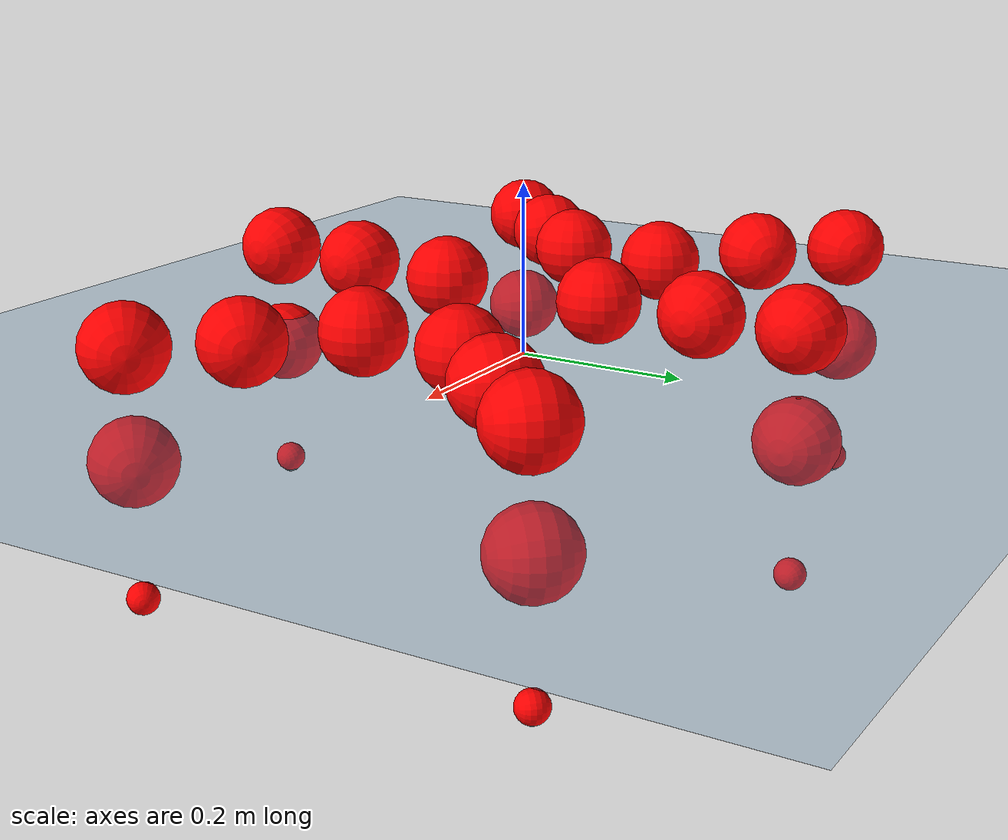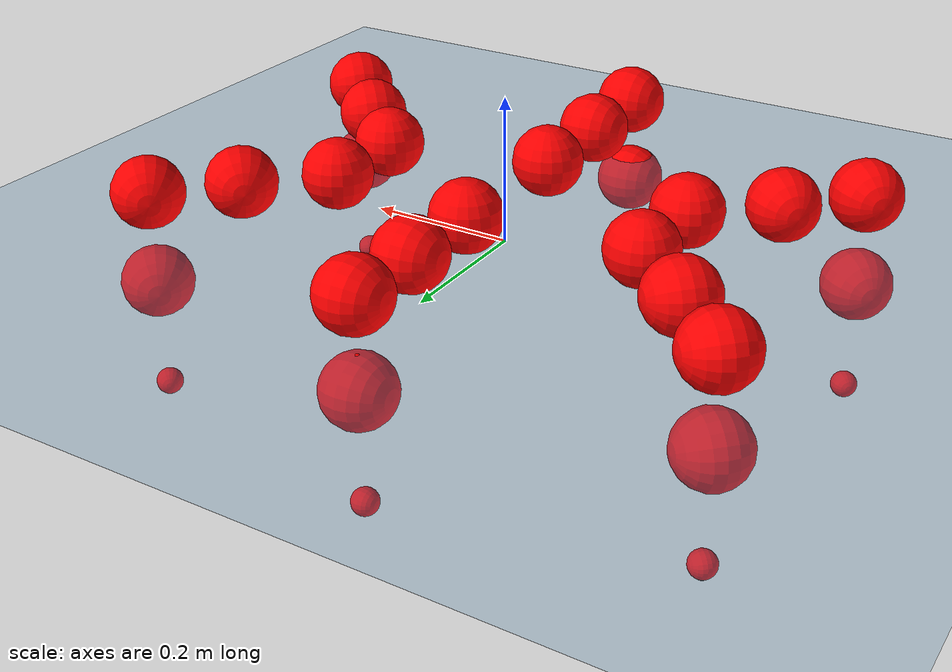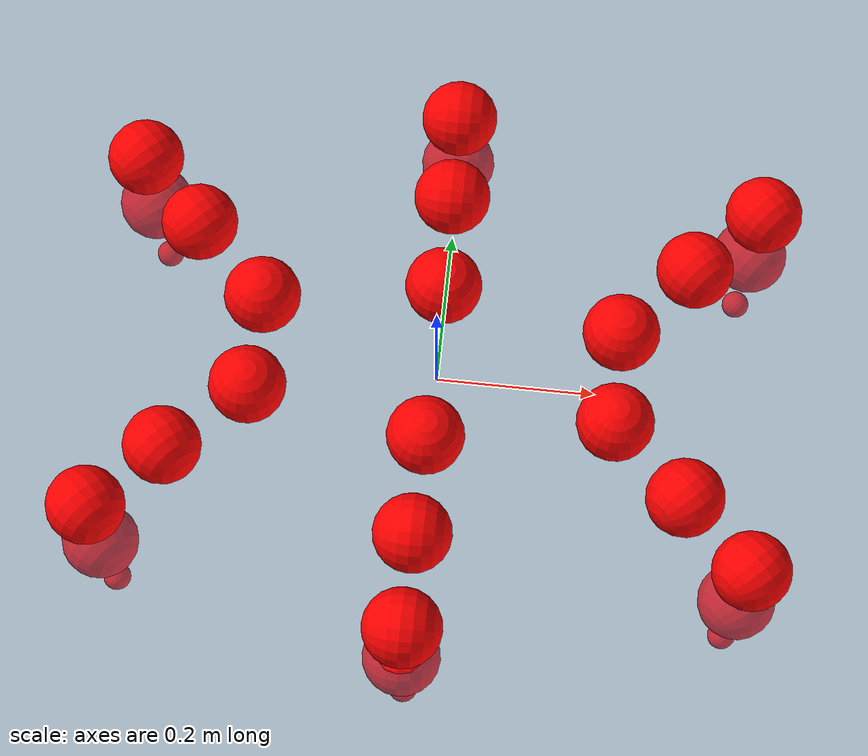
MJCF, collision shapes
<mujoco model="Golem">
  <compiler angle="radian" assetdir="assets" balanceinertia="true" inertiafromgeom="false"/>

  <option timestep="0.005" density="1.2" viscosity="2e-05"/>

  <size nkey="1"/>

  <visual>
    <quality shadowsize="8192"/>
    <map shadowclip="0.5"/>
  </visual>

  <default>
    <default class="/">
      <joint armature="0.01" damping="0.01" frictionloss="0.01"/>
      <geom contype="0" conaffinity="0" group="1" solref="-1000 -80"/>
      <site size="0.01 0.005 0.005" group="5"/>
      <general forcelimited="true" biastype="affine" gainprm="25" biasprm="0 -25 -0.5"/>
      <default class="visual">
        <geom type="mesh" group="2"/>
      </default>
      <default class="collision">
        <geom group="3"/>
      </default>
      <default class="foot">
        <geom size="0.01 0 0" condim="6" group="4" priority="1" solimp="0.015 1 0.01"/>
      </default>
      <default class="reward_collision_sphere">
        <geom group="5" rgba="1 0 0 1"/>
      </default>
    </default>
  </default>

  <asset>
    <texture type="skybox" colorspace="auto" name="//unnamed_texture_0" builtin="gradient" rgb1="0.95 0.95 0.95" rgb2="0.95 0.95 0.95" width="100" height="600"/>
    <texture type="2d" colorspace="auto" name="texplane" builtin="checker" rgb1="0.345 0.575 0.748" rgb2="0.345 0.575 0.748" markrgb="1 1 1" width="512" height="512"/>
    <material name="MatPlane" class="/" texture="texplane" texuniform="true" texrepeat="2 2" specular="0.9"/>
    <mesh name="body" class="/" file="body.stl" scale="0.001 0.001 0.001"/>
    <mesh name="coxa" class="/" file="coxa.stl" scale="0.001 0.001 0.001"/>
    <mesh name="femur" class="/" file="femur.stl" scale="0.001 0.001 0.001"/>
    <mesh name="tibia" class="/" file="tibia.stl" scale="0.001 0.001 0.001"/>
    <mesh name="tarsus" class="/" file="tarsus.stl" scale="0.001 0.001 0.001"/>
  </asset>

  <worldbody>
    <geom name="floor" class="/" size="100 100 0.125" type="plane" group="0" material="MatPlane"/>
    <light name="toplight_shadow" class="/" pos="0 0 5" dir="0.0990148 0.0990148 -0.990148" type="directional" ambient="0.04 0.04 0.04" diffuse="0.55 0.55 0.55" specular="0.12 0.12 0.12"/>
    <light name="toplight_fill" class="/" pos="0 0 5" dir="0.0990148 0.0990148 -0.990148" type="directional" castshadow="false" ambient="0.04 0.04 0.04" diffuse="0.3 0.3 0.3" specular="0.08 0.08 0.08"/>
    <body name="trunk" pos="-0.000766919 -0.00129412 0.00222891" quat="0.999999 -0.000208292 -0.000794035 0.000747039">
      <inertial pos="0.00105798 0.00164634 0.002957" quat="0.999983 -0.00177433 -0.000380024 0.00552606" mass="6.64099" diaginertia="0.0651351 0.0167765 0.0158104"/>
      <joint name="//unnamed_joint_0" type="free"/>
      <geom name="//unnamed_geom_1" class="/" pos="0 0 0.0698091" quat="1 0 0 0" type="mesh" rgba="0.9 0.9 0.9 1" mesh="body"/>
      <site name="imu" class="/" pos="0.183015 0.00392872 0.113408" size="0.0121179"/>
      <camera name="track" class="/" pos="0 -2.1953 0" quat="0.707107 0.707107 0 0" mode="trackcom"/>
      <camera name="ego_camera" class="/" pos="0.188104 0 0.109077" quat="-0.5 -0.5 0.5 0.5"/>
      <body name="coxa_RR" pos="-0.258991 -0.0899918 0.0726314" quat="0.383001 0.000477528 0.000995387 -0.923747">
        <inertial pos="0.000205543 0.00180922 0.00251747" quat="0.999991 0.00176713 0.0035795 -0.00171263" mass="0.36776" diaginertia="0.0646567 0.0165684 0.0167921"/>
        <joint name="coxa_joint_RR" class="/" pos="0 0 0" axis="0.00144423 -0.00891178 -0.999959" range="-3.1406 3.09359" armature="0.0109134" damping="0.00988799" frictionloss="0.0115491"/>
        <geom name="//unnamed_geom_2" class="/" type="mesh" rgba="0.2 0.2 0.2 1" mesh="coxa"/>
        <geom name="//unnamed_geom_3" class="reward_collision_sphere" size="0.0484715" pos="-0.0434085 0 0"/>
        <body name="femur_RR" pos="0.0851911 -0.00392999 -0.0045992" quat="0.499928 -0.500221 0.500223 0.499627">
          <inertial pos="0.00329089 9.91345e-05 0.00437673" quat="0.999833 -0.0136158 -0.0031268 -0.0117632" mass="0.358104" diaginertia="0.0644492 0.0160808 0.0153279"/>
          <joint name="femur_joint_RR" class="/" pos="0 0 0" axis="0.00653624 0.00714433 -0.999953" range="-3.19121 3.14939" armature="0.0117867" damping="0.0217475" frictionloss="0.0121403"/>
          <geom name="//unnamed_geom_4" class="/" type="mesh" rgba="0.9 0.9 0.9 1" mesh="femur"/>
          <geom name="//unnamed_geom_5" class="reward_collision_sphere" size="0.0484715"/>
          <body name="tibia_RR" pos="0.000758998 -0.117609 0.00357969" quat="-0.000267369 1 -0.000181417 -0.000476063">
            <inertial pos="-0.000938115 -2.45648e-05 0.00144409" quat="0.999978 -0.00430484 0.00176298 -0.00481548" mass="0.343704" diaginertia="0.0578398 0.0149673 0.0143784"/>
            <joint name="tibia_joint_RR" class="/" pos="0 0 0" axis="0.00290257 0.00153726 0.999995" stiffness="8.14609e-05" range="-3.16403 3.14261" armature="0.0108469" damping="0" frictionloss="0.0123322"/>
            <geom name="//unnamed_geom_6" class="/" type="mesh" rgba="0.2 0.2 0.2 1" mesh="tibia"/>
            <geom name="//unnamed_geom_7" class="reward_collision_sphere" size="0.0484715"/>
            <body name="tarsus_RR" pos="0.130322 0.00160603 -0.00176692" quat="1 0.000152776 0.000280867 0.000118793">
              <inertial pos="0.0858087 0.000610421 -0.000763367" quat="0.505407 0.511913 0.4896 0.492747" mass="0.331652" diaginertia="0.0644662 0.0157027 0.0149579"/>
              <joint name="tarsus_joint_RR" class="/" pos="0 0 0" axis="0.00847954 -0.0180502 0.999801" stiffness="0.00983917" range="-3.14841 3.12169" armature="0.0106887" damping="0.0391016" frictionloss="0.0136811"/>
              <geom name="//unnamed_geom_8" class="/" type="mesh" rgba="0.9 0.9 0.9 1" mesh="tarsus"/>
              <geom name="foot_1" class="foot" size="0.011465" pos="0.162058 0 0" quat="0 -0.707107 0 0.707107"/>
              <geom name="//unnamed_geom_10" class="reward_collision_sphere" size="0.0484715"/>
              <geom name="//unnamed_geom_11" class="reward_collision_sphere" size="0.0181768" pos="0.155547 0 0"/>
              <site name="foot_1" class="foot" pos="0.162058 0 0" quat="0 -0.707107 0 0.707107" size="0.0121179"/>
            </body>
          </body>
        </body>
      </body>
      <body name="coxa_RM" pos="-0.00236836 -0.148082 0.075062" quat="0.707022 0.000635493 0.00179513 -0.707189">
        <inertial pos="0.000844563 -0.000633311 0.00233646" quat="1 0.000310541 0.000375836 0.000133232" mass="0.35465" diaginertia="0.0653301 0.0159812 0.0147422"/>
        <joint name="coxa_joint_RM" class="/" pos="0 0 0" axis="-0.00269434 0.00186643 -0.999995" range="-3.18507 3.11054" armature="0.0131921" damping="0.0117073" frictionloss="0.0107736"/>
        <geom name="//unnamed_geom_12" class="/" type="mesh" rgba="0.2 0.2 0.2 1" mesh="coxa"/>
        <geom name="//unnamed_geom_13" class="reward_collision_sphere" size="0.0484715" pos="-0.0434085 0 0"/>
        <body name="femur_RM" pos="0.0848471 -0.0024172 0.00501599" quat="0.500006 -0.499913 0.500094 0.499987">
          <inertial pos="-0.00263068 -0.000662693 0.000144486" quat="0.999867 -0.00160939 0.0158018 0.00370074" mass="0.346584" diaginertia="0.065789 0.0161616 0.0151324"/>
          <joint name="femur_joint_RM" class="/" pos="0 0 0" axis="4.21993e-05 0.00441077 -0.99999" range="-3.14864 3.15471" armature="0.0135326" damping="0.028588" frictionloss="0.0113909"/>
          <geom name="//unnamed_geom_14" class="/" type="mesh" rgba="0.9 0.9 0.9 1" mesh="femur"/>
          <geom name="//unnamed_geom_15" class="reward_collision_sphere" size="0.0484715"/>
          <body name="tibia_RM" pos="-0.00485372 -0.118752 0.000593847" quat="1.40211e-05 1 3.86664e-05 3.35897e-05">
            <inertial pos="0.00339736 0.0024424 -0.00121064" quat="0.999951 0.00907238 -0.00332953 -0.00219576" mass="0.373548" diaginertia="0.0649893 0.0164041 0.0165484"/>
            <joint name="tibia_joint_RM" class="/" pos="0 0 0" axis="0.000675937 0.00283281 0.999996" range="-3.1412 3.0911" armature="0.0116819" damping="0.0147925" frictionloss="0.0106407"/>
            <geom name="//unnamed_geom_16" class="/" type="mesh" rgba="0.2 0.2 0.2 1" mesh="tibia"/>
            <geom name="//unnamed_geom_17" class="reward_collision_sphere" size="0.0484715"/>
            <body name="tarsus_RM" pos="0.124066 0.00241077 0.00240442" quat="1 -0.000120479 -6.65407e-05 0.000144952">
              <inertial pos="0.0851449 -0.00226946 -0.000597096" quat="0.494477 0.502346 0.508613 0.494423" mass="0.371902" diaginertia="0.0668494 0.0166215 0.0159123"/>
              <joint name="tarsus_joint_RM" class="/" pos="0 0 0" axis="-0.00116071 -0.000299517 0.999999" stiffness="0.00606479" range="-3.12677 3.14571" armature="0.0122751" damping="0.0160378" frictionloss="0.0125166"/>
              <geom name="//unnamed_geom_18" class="/" type="mesh" rgba="0.9 0.9 0.9 1" mesh="tarsus"/>
              <geom name="foot_2" class="foot" size="0.0131159" pos="0.162058 0 0" quat="0 -0.707107 0 0.707107"/>
              <geom name="//unnamed_geom_20" class="reward_collision_sphere" size="0.0484715"/>
              <geom name="//unnamed_geom_21" class="reward_collision_sphere" size="0.0181768" pos="0.155547 0 0"/>
              <site name="foot_2" class="foot" pos="0.162058 0 0" quat="0 -0.707107 0 0.707107" size="0.0121179"/>
            </body>
          </body>
        </body>
      </body>
      <body name="coxa_RF" pos="0.257915 -0.0928478 0.0698509" quat="0.924033 -0.000261929 -7.82023e-05 -0.382312">
        <inertial pos="0.00404809 0.00252414 0.000632861" quat="0.999984 -0.00107303 -0.00208701 -0.00524189" mass="0.34383" diaginertia="0.0662942 0.0169251 0.0159679"/>
        <joint name="coxa_joint_RF" class="/" pos="0 0 0" axis="0.00165343 -0.000502096 -0.999999" stiffness="0.000318387" range="-3.18432 3.14601" armature="0.0120453" damping="0.0103299" frictionloss="0.0105693"/>
        <geom name="//unnamed_geom_22" class="/" type="mesh" rgba="0.2 0.2 0.2 1" mesh="coxa"/>
        <geom name="//unnamed_geom_23" class="reward_collision_sphere" size="0.0484715" pos="-0.0434085 0 0"/>
        <body name="femur_RF" pos="0.0837315 0.00180561 -0.00224254" quat="0.499559 -0.501066 0.499471 0.499902">
          <inertial pos="0.00140836 -0.00325154 0.00168572" quat="0.999991 -0.00252469 -0.00330465 0.000985385" mass="0.35118" diaginertia="0.0637568 0.016048 0.0150817"/>
          <joint name="femur_joint_RF" class="/" pos="0 0 0" axis="-0.0046265 -0.00301754 -0.999985" stiffness="0.0166812" range="-3.09658 3.12508" armature="0.0116514" damping="0.0188908" frictionloss="0.0105767"/>
          <geom name="//unnamed_geom_24" class="/" type="mesh" rgba="0.9 0.9 0.9 1" mesh="femur"/>
          <geom name="//unnamed_geom_25" class="reward_collision_sphere" size="0.0484715"/>
          <body name="tibia_RF" pos="-0.00205376 -0.119638 -0.00103581" quat="8.55273e-05 1 -0.000461313 0.000143947">
            <inertial pos="0.0024415 0.00017828 -0.00170109" quat="0.999974 0.00491193 0.00500714 -0.0016205" mass="0.357082" diaginertia="0.0641997 0.0161034 0.0153458"/>
            <joint name="tibia_joint_RF" class="/" pos="0 0 0" axis="-0.00764498 -0.0109474 0.999911" stiffness="0.00892537" range="-3.13461 3.13553" armature="0.0111523" damping="0.0381819" frictionloss="0.0122854"/>
            <geom name="//unnamed_geom_26" class="/" type="mesh" rgba="0.2 0.2 0.2 1" mesh="tibia"/>
            <geom name="//unnamed_geom_27" class="reward_collision_sphere" size="0.0484715"/>
            <body name="tarsus_RF" pos="0.124849 -0.00214619 0.00174607" quat="1 -0.000272451 0.000198977 1.41255e-05">
              <inertial pos="0.0846267 0.000165974 0.000115732" quat="0.49281 0.495792 0.508425 0.502825" mass="0.368889" diaginertia="0.0654776 0.015271 0.0156717"/>
              <joint name="tarsus_joint_RF" class="/" pos="0 0 0" axis="0.00378946 -0.00528528 0.999979" range="-3.17534 3.13262" armature="0.0117635" damping="1.20453e-05" frictionloss="0.00961713"/>
              <geom name="//unnamed_geom_28" class="/" type="mesh" rgba="0.9 0.9 0.9 1" mesh="tarsus"/>
              <geom name="foot_3" class="foot" size="0.0109373" pos="0.162058 0 0" quat="0 -0.707107 0 0.707107"/>
              <geom name="//unnamed_geom_30" class="reward_collision_sphere" size="0.0484715"/>
              <geom name="//unnamed_geom_31" class="reward_collision_sphere" size="0.0181768" pos="0.155547 0 0"/>
              <site name="foot_3" class="foot" pos="0.162058 0 0" quat="0 -0.707107 0 0.707107" size="0.0121179"/>
            </body>
          </body>
        </body>
      </body>
      <body name="coxa_LR" pos="-0.256532 0.0947042 0.070594" quat="0.382253 0.00046896 -0.000837677 0.924057">
        <inertial pos="-0.00166279 0.00234466 0.00371362" quat="0.999998 0.000899289 0.00140784 -0.000800033" mass="0.382141" diaginertia="0.0676819 0.0169335 0.0168651"/>
        <joint name="coxa_joint_LR" class="/" pos="0 0 0" axis="-0.0054312 -0.00107959 -0.999985" range="-3.19058 3.06304" armature="0.0119209" damping="0.010844" frictionloss="0.0143877"/>
        <geom name="//unnamed_geom_32" class="/" type="mesh" rgba="0.2 0.2 0.2 1" mesh="coxa"/>
        <geom name="//unnamed_geom_33" class="reward_collision_sphere" size="0.0484715" pos="-0.0434085 0 0"/>
        <body name="femur_LR" pos="0.0859231 0.000856951 0.00387388" quat="0.499886 -0.499622 0.500557 0.499934">
          <inertial pos="0.000308095 -0.00113591 -0.000944985" quat="0.999974 0.00638668 -0.0023987 -0.00240446" mass="0.348711" diaginertia="0.0603998 0.0148101 0.0153113"/>
          <joint name="femur_joint_LR" class="/" pos="0 0 0" axis="-0.0100467 -0.00326164 0.999944" stiffness="0.00104292" range="-3.1324 3.14566" armature="0.0124466" damping="0.0100562" frictionloss="0.0105515"/>
          <geom name="//unnamed_geom_34" class="/" type="mesh" rgba="0.9 0.9 0.9 1" mesh="femur"/>
          <geom name="//unnamed_geom_35" class="reward_collision_sphere" size="0.0484715"/>
          <body name="tibia_LR" pos="0.00123629 -0.118593 -0.00225586" quat="2.81549e-05 1 -0.000105364 -0.000139874">
            <inertial pos="0.000938531 -0.00288003 -0.000388554" quat="0.999995 -0.00041903 0.00303643 0.000530659" mass="0.352406" diaginertia="0.0597543 0.0156365 0.0160552"/>
            <joint name="tibia_joint_LR" class="/" pos="0 0 0" axis="0.00144234 0.00345777 -0.999993" range="-3.1243 3.15053" armature="0.01377" damping="0" frictionloss="0.0130203"/>
            <geom name="//unnamed_geom_36" class="/" type="mesh" rgba="0.2 0.2 0.2 1" mesh="tibia"/>
            <geom name="//unnamed_geom_37" class="reward_collision_sphere" size="0.0484715"/>
            <body name="tarsus_LR" pos="0.125501 -0.00104635 -0.00165607" quat="0.999999 0.000993496 3.09976e-05 -0.000433828">
              <inertial pos="0.0848511 -0.000853543 -0.00256755" quat="0.493563 0.500733 0.507775 0.497822" mass="0.370398" diaginertia="0.065548 0.0166842 0.0163391"/>
              <joint name="tarsus_joint_LR" class="/" pos="0 0 0" axis="0.00161549 0.0015273 -0.999998" range="-3.18253 3.09353" armature="0.0145312" damping="0.0296504" frictionloss="0.0105892"/>
              <geom name="//unnamed_geom_38" class="/" type="mesh" rgba="0.9 0.9 0.9 1" mesh="tarsus"/>
              <geom name="foot_4" class="foot" size="0.013384" pos="0.162058 0 0" quat="0.707107 0 -0.707107 0"/>
              <geom name="//unnamed_geom_40" class="reward_collision_sphere" size="0.0484715"/>
              <geom name="//unnamed_geom_41" class="reward_collision_sphere" size="0.0181768" pos="0.155547 0 0"/>
              <site name="foot_4" class="foot" pos="0.162058 0 0" quat="0.707107 0 -0.707107 0" size="0.0121179"/>
            </body>
          </body>
        </body>
      </body>
      <body name="coxa_LM" pos="-0.000481929 0.141564 0.0737906" quat="0.707369 0.0022443 0.000685252 0.70684">
        <inertial pos="-0.00108214 0.0020062 -0.00116694" quat="0.999988 0.00317089 -0.00374814 0.00088716" mass="0.352533" diaginertia="0.0653473 0.0166505 0.0158859"/>
        <joint name="coxa_joint_LM" class="/" pos="0 0 0" axis="-0.00395829 -0.0046145 -0.999982" range="-3.1247 3.12361" armature="0.00965945" damping="0.00218736" frictionloss="0.0136762"/>
        <geom name="//unnamed_geom_42" class="/" type="mesh" rgba="0.2 0.2 0.2 1" mesh="coxa"/>
        <geom name="//unnamed_geom_43" class="reward_collision_sphere" size="0.0484715" pos="-0.0434085 0 0"/>
        <body name="femur_LM" pos="0.0815999 0.00156809 0.000224422" quat="0.499992 -0.49999 0.500009 0.500009">
          <inertial pos="0.000865183 -0.000364323 0.00211205" quat="0.999978 -0.000701676 -0.00652584 0.000182407" mass="0.34903" diaginertia="0.061766 0.0162981 0.0155477"/>
          <joint name="femur_joint_LM" class="/" pos="0 0 0" axis="-0.00414975 -0.0013071 0.999991" stiffness="0.00167153" range="-3.12026 3.19067" armature="0.012654" damping="0" frictionloss="0.0123552"/>
          <geom name="//unnamed_geom_44" class="/" type="mesh" rgba="0.9 0.9 0.9 1" mesh="femur"/>
          <geom name="//unnamed_geom_45" class="reward_collision_sphere" size="0.0484715"/>
          <body name="tibia_LM" pos="0.000768924 -0.114416 0.00174002" quat="0.000414214 0.999999 0.000859095 -0.000375539">
            <inertial pos="-0.00334159 -0.00398101 -0.00437206" quat="0.999991 -0.000517452 -0.00431661 5.22565e-05" mass="0.353552" diaginertia="0.0615438 0.0162497 0.0153959"/>
            <joint name="tibia_joint_LM" class="/" pos="0 0 0" axis="0.00561181 0.00420421 -0.999975" stiffness="0.00436395" range="-3.08675 3.12096" armature="0.0125198" damping="0.0111688" frictionloss="0.012288"/>
            <geom name="//unnamed_geom_46" class="/" type="mesh" rgba="0.2 0.2 0.2 1" mesh="tibia"/>
            <geom name="//unnamed_geom_47" class="reward_collision_sphere" size="0.0484715"/>
            <body name="tarsus_LM" pos="0.124919 0.00111171 -0.000727079" quat="1 -0.00028007 -0.00018457 0.000296355">
              <inertial pos="0.0893701 0.00224266 0.00111346" quat="0.49981 0.494724 0.502641 0.502782" mass="0.340119" diaginertia="0.0627016 0.0143037 0.0143423"/>
              <joint name="tarsus_joint_LM" class="/" pos="0 0 0" axis="-0.00276436 0.00341205 -0.99999" range="-3.03877 3.17241" armature="0.0120081" damping="0.00790134" frictionloss="0.0119206"/>
              <geom name="//unnamed_geom_48" class="/" type="mesh" rgba="0.9 0.9 0.9 1" mesh="tarsus"/>
              <geom name="foot_5" class="foot" size="0.0117746" pos="0.162058 0 0" quat="0.707107 0 -0.707107 0"/>
              <geom name="//unnamed_geom_50" class="reward_collision_sphere" size="0.0484715"/>
              <geom name="//unnamed_geom_51" class="reward_collision_sphere" size="0.0181768" pos="0.155547 0 0"/>
              <site name="foot_5" class="foot" pos="0.162058 0 0" quat="0.707107 0 -0.707107 0" size="0.0121179"/>
            </body>
          </body>
        </body>
      </body>
      <body name="coxa_LF" pos="0.257164 0.0902793 0.0667118" quat="0.924049 0.000897061 -0.00053027 0.382273">
        <inertial pos="0.000337432 -0.0036458 0.000718545" quat="1 -0.000487413 0.000489289 0.000212106" mass="0.3417" diaginertia="0.0595723 0.0151049 0.0145616"/>
        <joint name="coxa_joint_LF" class="/" pos="0 0 0" axis="-0.00582753 -0.00193902 -0.999981" stiffness="0.000417879" range="-3.15016 3.15753" armature="0.00934081" damping="0.0262908" frictionloss="0.0136848"/>
        <geom name="//unnamed_geom_52" class="/" type="mesh" rgba="0.2 0.2 0.2 1" mesh="coxa"/>
        <geom name="//unnamed_geom_53" class="reward_collision_sphere" size="0.0484715" pos="-0.0434085 0 0"/>
        <body name="femur_LF" pos="0.0838999 0.00549383 0.00291089" quat="0.499955 -0.499778 0.499967 0.5003">
          <inertial pos="0.000569062 -0.00268954 -0.00429939" quat="0.999964 0.00297492 -0.00791942 0.000335582" mass="0.362384" diaginertia="0.0627558 0.0150531 0.0152913"/>
          <joint name="femur_joint_LF" class="/" pos="0 0 0" axis="-0.00231314 -0.00222552 0.999995" stiffness="0.0123969" range="-3.12379 3.20396" armature="0.0123413" damping="0" frictionloss="0.0136432"/>
          <geom name="//unnamed_geom_54" class="/" type="mesh" rgba="0.9 0.9 0.9 1" mesh="femur"/>
          <geom name="//unnamed_geom_55" class="reward_collision_sphere" size="0.0484715"/>
          <body name="tibia_LF" pos="0.000506809 -0.119948 0.00280966" quat="0.000473939 1 -0.00069559 -0.000406789">
            <inertial pos="0.00256177 0.00286431 -0.000567687" quat="0.999951 0.00385708 -0.00178979 0.00891967" mass="0.359129" diaginertia="0.0625379 0.016028 0.0150284"/>
            <joint name="tibia_joint_LF" class="/" pos="0 0 0" axis="0.00456732 -0.00204449 -0.999987" range="-3.11575 3.15263" armature="0.012597" damping="0.00683028" frictionloss="0.0106956"/>
            <geom name="//unnamed_geom_56" class="/" type="mesh" rgba="0.2 0.2 0.2 1" mesh="tibia"/>
            <geom name="//unnamed_geom_57" class="reward_collision_sphere" size="0.0484715"/>
            <body name="tarsus_LF" pos="0.127048 0.000473234 -0.00267502" quat="0.999997 0.00134244 -0.00157517 0.00103072">
              <inertial pos="0.0863471 -0.000739256 -3.7073e-05" quat="0.500398 0.497666 0.497759 0.504149" mass="0.351906" diaginertia="0.0667144 0.0166359 0.0160997"/>
              <joint name="tarsus_joint_LF" class="/" pos="0 0 0" axis="-0.0022495 -0.021168 -0.999773" stiffness="0.0198072" range="-3.09044 3.16102" armature="0.0136313" damping="0.0319191" frictionloss="0.0132151"/>
              <geom name="//unnamed_geom_58" class="/" type="mesh" rgba="0.9 0.9 0.9 1" mesh="tarsus"/>
              <geom name="foot_6" class="foot" size="0.0126358" pos="0.162058 0 0" quat="0.707107 0 -0.707107 0"/>
              <geom name="//unnamed_geom_60" class="reward_collision_sphere" size="0.0484715"/>
              <geom name="//unnamed_geom_61" class="reward_collision_sphere" size="0.0181768" pos="0.155547 0 0"/>
              <site name="foot_6" class="foot" pos="0.162058 0 0" quat="0.707107 0 -0.707107 0" size="0.0121179"/>
            </body>
          </body>
        </body>
      </body>
    </body>
  </worldbody>

  <contact>
    <pair class="/" geom1="floor" geom2="foot_1" name="//unnamed_contact_0"/>
    <pair class="/" geom1="floor" geom2="foot_2" name="//unnamed_contact_1"/>
    <pair class="/" geom1="floor" geom2="foot_3" name="//unnamed_contact_2"/>
    <pair class="/" geom1="floor" geom2="foot_4" name="//unnamed_contact_3"/>
    <pair class="/" geom1="floor" geom2="foot_5" name="//unnamed_contact_4"/>
    <pair class="/" geom1="floor" geom2="foot_6" name="//unnamed_contact_5"/>
  </contact>

  <actuator>
    <general name="coxa_joint_RR" class="/" joint="coxa_joint_RR" forcerange="-9.838 9.838" gainprm="29.6299" biasprm="0 -29.6299 -0.592352"/>
    <general name="femur_joint_RR" class="/" joint="femur_joint_RR" forcerange="-9.51863 9.51863" gainprm="29.6299" biasprm="0 -29.6299 -0.592352"/>
    <general name="tibia_joint_RR" class="/" joint="tibia_joint_RR" forcerange="-10.1705 10.1705" gainprm="29.6299" biasprm="0 -29.6299 -0.592352"/>
    <general name="tarsus_joint_RR" class="/" joint="tarsus_joint_RR" forcerange="-9.36555 9.36555" gainprm="29.6299" biasprm="0 -29.6299 -0.592352"/>
    <general name="coxa_joint_RM" class="/" joint="coxa_joint_RM" forcerange="-8.83383 8.83383" gainprm="29.6299" biasprm="0 -29.6299 -0.592352"/>
    <general name="femur_joint_RM" class="/" joint="femur_joint_RM" forcerange="-8.78857 8.78857" gainprm="29.6299" biasprm="0 -29.6299 -0.592352"/>
    <general name="tibia_joint_RM" class="/" joint="tibia_joint_RM" forcerange="-9.53302 9.53302" gainprm="29.6299" biasprm="0 -29.6299 -0.592352"/>
    <general name="tarsus_joint_RM" class="/" joint="tarsus_joint_RM" forcerange="-7.64463 7.64463" gainprm="29.6299" biasprm="0 -29.6299 -0.592352"/>
    <general name="coxa_joint_RF" class="/" joint="coxa_joint_RF" forcerange="-9.64447 9.64447" gainprm="29.6299" biasprm="0 -29.6299 -0.592352"/>
    <general name="femur_joint_RF" class="/" joint="femur_joint_RF" forcerange="-8.93227 8.93227" gainprm="29.6299" biasprm="0 -29.6299 -0.592352"/>
    <general name="tibia_joint_RF" class="/" joint="tibia_joint_RF" forcerange="-7.94683 7.94683" gainprm="29.6299" biasprm="0 -29.6299 -0.592352"/>
    <general name="tarsus_joint_RF" class="/" joint="tarsus_joint_RF" forcerange="-9.54937 9.54937" gainprm="29.6299" biasprm="0 -29.6299 -0.592352"/>
    <general name="coxa_joint_LR" class="/" joint="coxa_joint_LR" forcerange="-8.98834 8.98834" gainprm="29.6299" biasprm="0 -29.6299 -0.592352"/>
    <general name="femur_joint_LR" class="/" joint="femur_joint_LR" forcerange="-9.15759 9.15759" gainprm="29.6299" biasprm="0 -29.6299 -0.592352"/>
    <general name="tibia_joint_LR" class="/" joint="tibia_joint_LR" forcerange="-8.12696 8.12696" gainprm="29.6299" biasprm="0 -29.6299 -0.592352"/>
    <general name="tarsus_joint_LR" class="/" joint="tarsus_joint_LR" forcerange="-8.63834 8.63834" gainprm="29.6299" biasprm="0 -29.6299 -0.592352"/>
    <general name="coxa_joint_LM" class="/" joint="coxa_joint_LM" forcerange="-8.12827 8.12827" gainprm="29.6299" biasprm="0 -29.6299 -0.592352"/>
    <general name="femur_joint_LM" class="/" joint="femur_joint_LM" forcerange="-7.98973 7.98973" gainprm="29.6299" biasprm="0 -29.6299 -0.592352"/>
    <general name="tibia_joint_LM" class="/" joint="tibia_joint_LM" forcerange="-8.8356 8.8356" gainprm="29.6299" biasprm="0 -29.6299 -0.592352"/>
    <general name="tarsus_joint_LM" class="/" joint="tarsus_joint_LM" forcerange="-8.05751 8.05751" gainprm="29.6299" biasprm="0 -29.6299 -0.592352"/>
    <general name="coxa_joint_LF" class="/" joint="coxa_joint_LF" forcerange="-8.02124 8.02124" gainprm="29.6299" biasprm="0 -29.6299 -0.592352"/>
    <general name="femur_joint_LF" class="/" joint="femur_joint_LF" forcerange="-9.69245 9.69245" gainprm="29.6299" biasprm="0 -29.6299 -0.592352"/>
    <general name="tibia_joint_LF" class="/" joint="tibia_joint_LF" forcerange="-9.02174 9.02174" gainprm="29.6299" biasprm="0 -29.6299 -0.592352"/>
    <general name="tarsus_joint_LF" class="/" joint="tarsus_joint_LF" forcerange="-8.10309 8.10309" gainprm="29.6299" biasprm="0 -29.6299 -0.592352"/>
  </actuator>

  <sensor>
    <gyro site="imu" name="imu_angular_velocity"/>
    <velocimeter site="imu" name="imu_linear_velocity"/>
    <framelinvel objtype="site" objname="foot_1" name="foot_1_global_linear_velocity"/>
    <framelinvel objtype="site" objname="foot_2" name="foot_2_global_linear_velocity"/>
    <framelinvel objtype="site" objname="foot_3" name="foot_3_global_linear_velocity"/>
    <framelinvel objtype="site" objname="foot_4" name="foot_4_global_linear_velocity"/>
    <framelinvel objtype="site" objname="foot_5" name="foot_5_global_linear_velocity"/>
    <framelinvel objtype="site" objname="foot_6" name="foot_6_global_linear_velocity"/>
  </sensor>

  <keyframe>
    <key name="home" qpos="0 0 0.1457 1 0 0 0 0 0 0 0 0 0 0 0 0 0 0 0 0 0 0 0 0 0 0 0 0 0 0 0"/>
  </keyframe>
</mujoco>
